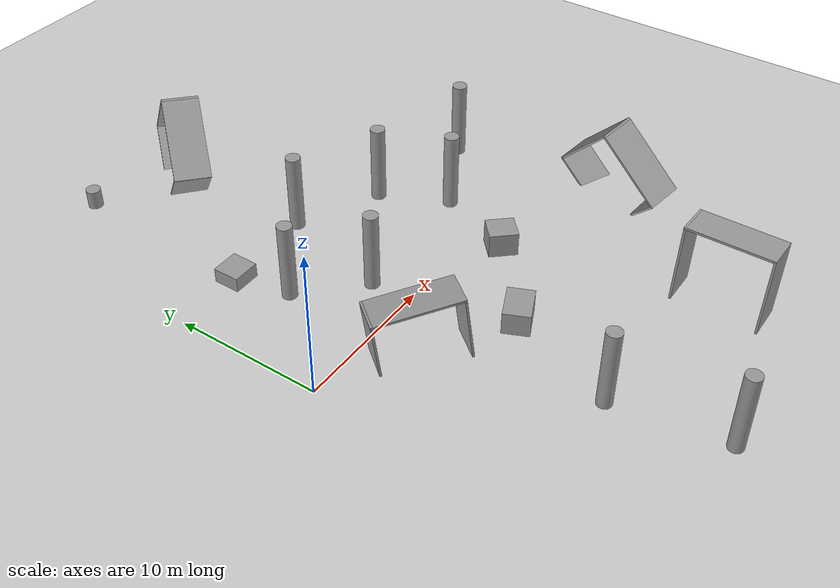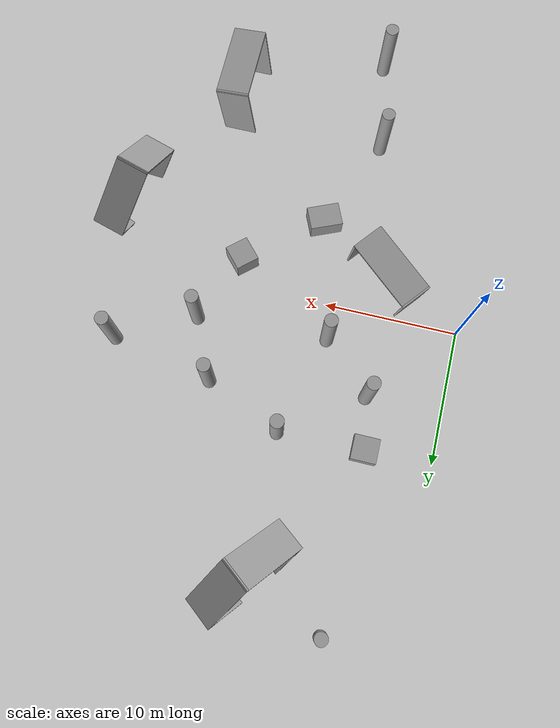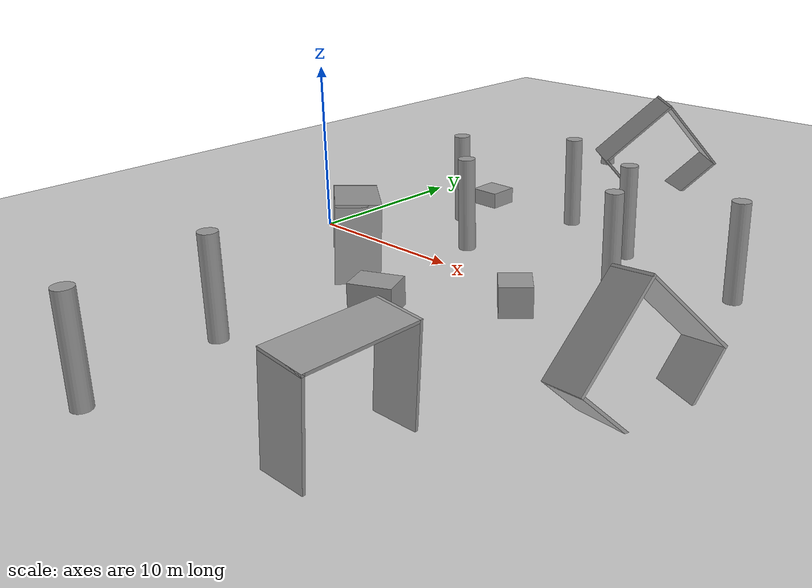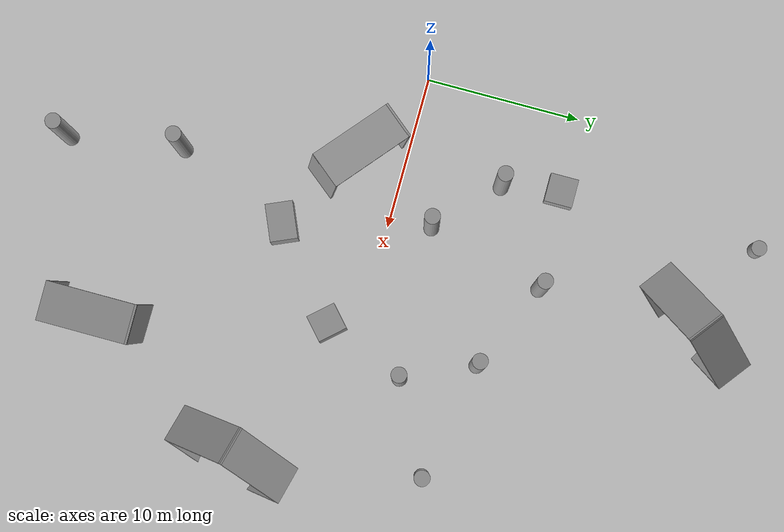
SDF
<sdf version="1.6">
 <world name="default">
  <model name="ground_plane">
   <static>1</static>
   <link name="link">
    <collision name="collision">
     <geometry><plane><normal>0 0 1</normal><size>100 100</size></plane></geometry>
     <surface><friction><ode><mu>100</mu><mu2>50</mu2></ode></friction></surface>
    </collision>
    <visual name="visual">
     <cast_shadows>0</cast_shadows>
     <geometry><plane><normal>0 0 1</normal><size>100 100</size></plane></geometry>
     <material>
      <script><uri>file://media/materials/scripts/gazebo.material</uri><name>Gazebo/Grey</name></script>
     </material>
    </visual>
   </link>
  </model>
  <model name="unit_cylinder">
   <pose>5.28034 23.1376 0.661761 0 -0 0.001729</pose>
   <link name="link">
    <inertial>
     <mass>1</mass>
     <inertia><ixx>0.145833</ixx><ixy>0</ixy><ixz>0</ixz><iyy>0.145833</iyy><iyz>0</iyz><izz>0.125</izz></inertia>
    </inertial>
    <collision name="collision">
     <geometry><cylinder><radius>0.5</radius><length>1.32353</length></cylinder></geometry>
    </collision>
    <visual name="visual">
     <geometry><cylinder><radius>0.5</radius><length>1.32353</length></cylinder></geometry>
     <material>
      <script><name>Gazebo/Grey</name><uri>file://media/materials/scripts/gazebo.material</uri></script>
     </material>
    </visual>
   </link>
  </model>
  <model name="unit_cylinder_clone_2">
   <pose>9.34612 2.72453 2.75253 0 -0 0.007033</pose>
   <link name="link">
    <inertial>
     <mass>1</mass>
     <inertia><ixx>0.145833</ixx><ixy>0</ixy><ixz>0</ixz><iyy>0.145833</iyy><iyz>0</iyz><izz>0.125</izz></inertia>
    </inertial>
    <collision name="collision">
     <geometry><cylinder><radius>0.5</radius><length>5.50507</length></cylinder></geometry>
    </collision>
    <visual name="visual">
     <geometry><cylinder><radius>0.5</radius><length>5.50507</length></cylinder></geometry>
     <material>
      <script><name>Gazebo/Grey</name><uri>file://media/materials/scripts/gazebo.material</uri></script>
     </material>
    </visual>
   </link>
  </model>
  <model name="unit_cylinder_clone_4">
   <pose>8.59201 -13.9206 2.75253 0 -0 0.007526</pose>
   <link name="link">
    <inertial>
     <mass>1</mass>
     <inertia><ixx>0.145833</ixx><ixy>0</ixy><ixz>0</ixz><iyy>0.145833</iyy><iyz>0</iyz><izz>0.125</izz></inertia>
    </inertial>
    <collision name="collision">
     <geometry><cylinder><radius>0.5</radius><length>5.50507</length></cylinder></geometry>
    </collision>
    <visual name="visual">
     <geometry><cylinder><radius>0.5</radius><length>5.50507</length></cylinder></geometry>
     <material>
      <script><name>Gazebo/Grey</name><uri>file://media/materials/scripts/gazebo.material</uri></script>
     </material>
    </visual>
   </link>
  </model>
  <model name="unit_cylinder_clone_5">
   <pose>5.63029 6.34759 2.75253 0 -0 0.006959</pose>
   <link name="link">
    <inertial>
     <mass>1</mass>
     <inertia><ixx>0.145833</ixx><ixy>0</ixy><ixz>0</ixz><iyy>0.145833</iyy><iyz>0</iyz><izz>0.125</izz></inertia>
    </inertial>
    <collision name="collision">
     <geometry><cylinder><radius>0.5</radius><length>5.50507</length></cylinder></geometry>
    </collision>
    <visual name="visual">
     <geometry><cylinder><radius>0.5</radius><length>5.50507</length></cylinder></geometry>
     <material>
      <script><name>Gazebo/Grey</name><uri>file://media/materials/scripts/gazebo.material</uri></script>
     </material>
    </visual>
   </link>
  </model>
  <model name="unit_cylinder_clone_8">
   <pose>11.3719 10.3631 2.75253 0 -0 0.007031</pose>
   <link name="link">
    <inertial>
     <mass>1</mass>
     <inertia><ixx>0.145833</ixx><ixy>0</ixy><ixz>0</ixz><iyy>0.145833</iyy><iyz>0</iyz><izz>0.125</izz></inertia>
    </inertial>
    <collision name="collision">
     <geometry><cylinder><radius>0.5</radius><length>5.50507</length></cylinder></geometry>
    </collision>
    <visual name="visual">
     <geometry><cylinder><radius>0.5</radius><length>5.50507</length></cylinder></geometry>
     <material>
      <script><name>Gazebo/Grey</name><uri>file://media/materials/scripts/gazebo.material</uri></script>
     </material>
    </visual>
   </link>
  </model>
  <model name="unit_box_clone">
   <pose>11.597 -6.53716 0.788235 0 0 -1.1581</pose>
   <link name="link">
    <inertial>
     <mass>1</mass>
     <inertia>
      <ixx>0.166667</ixx>
      <ixy>0</ixy>
      <ixz>0</ixz>
      <iyy>0.166667</iyy>
      <iyz>0</iyz>
      <izz>0.166667</izz>
     </inertia>
    </inertial>
    <collision name="collision"><geometry><box><size>1.76997 2.44518 1.57647</size></box></geometry></collision>
    <visual name="visual">
     <geometry><box><size>1.76997 2.44518 1.57647</size></box></geometry>
     <material>
      <script><name>Gazebo/Grey</name><uri>file://media/materials/scripts/gazebo.material</uri></script>
     </material>
    </visual>
   </link>
  </model>
  <model name="unit_box_clone_0">
   <pose>17.0391 -2.04264 0.84104 0 -0 0.734782</pose>
   <link name="link">
    <inertial>
     <mass>1</mass>
     <inertia>
      <ixx>0.166667</ixx>
      <ixy>0</ixy>
      <ixz>0</ixz>
      <iyy>0.166667</iyy>
      <iyz>0</iyz>
      <izz>0.166667</izz>
     </inertia>
    </inertial>
    <collision name="collision"><geometry><box><size>1.76997 1.92154 1.68208</size></box></geometry></collision>
    <visual name="visual">
     <geometry><box><size>1.76997 1.92154 1.68208</size></box></geometry>
     <material>
      <script><name>Gazebo/Grey</name><uri>file://media/materials/scripts/gazebo.material</uri></script>
     </material>
    </visual>
   </link>
  </model>
  <model name="unit_cylinder_clone_7_clone_0">
   <pose>24.7832 6.25194 2.75253 0 -0 0.006995</pose>
   <link name="link">
    <inertial>
     <mass>1</mass>
     <inertia><ixx>0.145833</ixx><ixy>0</ixy><ixz>0</ixz><iyy>0.145833</iyy><iyz>0</iyz><izz>0.125</izz></inertia>
    </inertial>
    <collision name="collision">
     <geometry><cylinder><radius>0.5</radius><length>5.50507</length></cylinder></geometry>
    </collision>
    <visual name="visual">
     <geometry><cylinder><radius>0.5</radius><length>5.50507</length></cylinder></geometry>
     <material>
      <script><name>Gazebo/Grey</name><uri>file://media/materials/scripts/gazebo.material</uri></script>
     </material>
    </visual>
   </link>
  </model>
  <model name="vRoom_clone_3_clone_clone_9">
   <link name="Wall_0">
    <pose>-2.8 -0 -1e-06 -0 -0 -1.5708</pose>
    <velocity_decay><linear>0</linear><angular>0</angular></velocity_decay>
    <visual name="Wall_0_Visual">
     <pose>0 0 1.25 0 -0 0</pose>
     <geometry><box><size>5.75 0.15 2.5</size></box></geometry>
     <material>
      <script><uri>file://media/materials/scripts/gazebo.material</uri><name>Gazebo/Grey</name></script>
      <ambient>1 1 1 1</ambient>
     </material>
    </visual>
    <collision name="Wall_0_Collision">
     <pose>0 0 1.25 0 -0 0</pose>
     <geometry><box><size>5.75 0.15 2.5</size></box></geometry>
     <surface>
      <friction>
       <ode><mu>1</mu><mu2>1</mu2><fdir1>0 0 0</fdir1><slip1>0</slip1><slip2>0</slip2></ode>
       <torsional>
        <coefficient>1</coefficient>
        <patch_radius>0</patch_radius>
        <surface_radius>0</surface_radius>
        <use_patch_radius>1</use_patch_radius>
        <ode><slip>0</slip></ode>
       </torsional>
      </friction>
      <bounce><restitution_coefficient>0</restitution_coefficient><threshold>1e+06</threshold></bounce>
      <contact>
       <collide_without_contact>0</collide_without_contact>
       <collide_without_contact_bitmask>1</collide_without_contact_bitmask>
       <collide_bitmask>1</collide_bitmask>
       <ode>
        <soft_cfm>0</soft_cfm>
        <soft_erp>0.2</soft_erp>
        <kp>1e+13</kp>
        <kd>1</kd>
        <max_vel>0.01</max_vel>
        <min_depth>0</min_depth>
       </ode>
       <bullet>
        <split_impulse>1</split_impulse>
        <split_impulse_penetration_threshold>-0.01</split_impulse_penetration_threshold>
        <soft_cfm>0</soft_cfm>
        <soft_erp>0.2</soft_erp>
        <kp>1e+13</kp>
        <kd>1</kd>
       </bullet>
      </contact>
     </surface>
    </collision>
   </link>
   <link name="Wall_1">
    <pose>2e-06 -2.8 2e-06 0 -0 0</pose>
    <velocity_decay><linear>0</linear><angular>0</angular></velocity_decay>
    <visual name="Wall_1_Visual">
     <pose>0 0 1.25 0 -0 0</pose>
     <geometry><box><size>5.75 0.15 2.5</size></box></geometry>
     <material>
      <script><uri>file://media/materials/scripts/gazebo.material</uri><name>Gazebo/Grey</name></script>
      <ambient>1 1 1 1</ambient>
     </material>
    </visual>
    <collision name="Wall_1_Collision">
     <pose>0 0 1.25 0 -0 0</pose>
     <geometry><box><size>5.75 0.15 2.5</size></box></geometry>
     <surface>
      <friction>
       <ode><mu>1</mu><mu2>1</mu2><fdir1>0 0 0</fdir1><slip1>0</slip1><slip2>0</slip2></ode>
       <torsional>
        <coefficient>1</coefficient>
        <patch_radius>0</patch_radius>
        <surface_radius>0</surface_radius>
        <use_patch_radius>1</use_patch_radius>
        <ode><slip>0</slip></ode>
       </torsional>
      </friction>
      <bounce><restitution_coefficient>0</restitution_coefficient><threshold>1e+06</threshold></bounce>
      <contact>
       <collide_without_contact>0</collide_without_contact>
       <collide_without_contact_bitmask>1</collide_without_contact_bitmask>
       <collide_bitmask>1</collide_bitmask>
       <ode>
        <soft_cfm>0</soft_cfm>
        <soft_erp>0.2</soft_erp>
        <kp>1e+13</kp>
        <kd>1</kd>
        <max_vel>0.01</max_vel>
        <min_depth>0</min_depth>
       </ode>
       <bullet>
        <split_impulse>1</split_impulse>
        <split_impulse_penetration_threshold>-0.01</split_impulse_penetration_threshold>
        <soft_cfm>0</soft_cfm>
        <soft_erp>0.2</soft_erp>
        <kp>1e+13</kp>
        <kd>1</kd>
       </bullet>
      </contact>
     </surface>
    </collision>
   </link>
   <link name="Wall_2">
    <pose>2.8 0 1e-06 0 -0 1.5708</pose>
    <velocity_decay><linear>0</linear><angular>0</angular></velocity_decay>
    <visual name="Wall_2_Visual">
     <pose>0 0 1.25 0 -0 0</pose>
     <geometry><box><size>5.75 0.15 2.5</size></box></geometry>
     <material>
      <script><uri>file://media/materials/scripts/gazebo.material</uri><name>Gazebo/Grey</name></script>
      <ambient>1 1 1 1</ambient>
     </material>
    </visual>
    <collision name="Wall_2_Collision">
     <pose>0 0 1.25 0 -0 0</pose>
     <geometry><box><size>5.75 0.15 2.5</size></box></geometry>
     <surface>
      <friction>
       <ode><mu>1</mu><mu2>1</mu2><fdir1>0 0 0</fdir1><slip1>0</slip1><slip2>0</slip2></ode>
       <torsional>
        <coefficient>1</coefficient>
        <patch_radius>0</patch_radius>
        <surface_radius>0</surface_radius>
        <use_patch_radius>1</use_patch_radius>
        <ode><slip>0</slip></ode>
       </torsional>
      </friction>
      <bounce><restitution_coefficient>0</restitution_coefficient><threshold>1e+06</threshold></bounce>
      <contact>
       <collide_without_contact>0</collide_without_contact>
       <collide_without_contact_bitmask>1</collide_without_contact_bitmask>
       <collide_bitmask>1</collide_bitmask>
       <ode>
        <soft_cfm>0</soft_cfm>
        <soft_erp>0.2</soft_erp>
        <kp>1e+13</kp>
        <kd>1</kd>
        <max_vel>0.01</max_vel>
        <min_depth>0</min_depth>
       </ode>
       <bullet>
        <split_impulse>1</split_impulse>
        <split_impulse_penetration_threshold>-0.01</split_impulse_penetration_threshold>
        <soft_cfm>0</soft_cfm>
        <soft_erp>0.2</soft_erp>
        <kp>1e+13</kp>
        <kd>1</kd>
       </bullet>
      </contact>
     </surface>
    </collision>
   </link>
   <link name="Wall_3">
    <pose>-2e-06 2.8 -2e-06 0 -0 3.14159</pose>
    <velocity_decay><linear>0</linear><angular>0</angular></velocity_decay>
    <visual name="Wall_3_Visual">
     <pose>0 0 1.25 0 -0 0</pose>
     <geometry><box><size>5.75 0.15 2.5</size></box></geometry>
     <material>
      <script><uri>file://media/materials/scripts/gazebo.material</uri><name>Gazebo/Grey</name></script>
      <ambient>1 1 1 1</ambient>
     </material>
    </visual>
    <collision name="Wall_3_Collision">
     <pose>0 0 1.25 0 -0 0</pose>
     <geometry><box><size>5.75 0.15 2.5</size></box></geometry>
     <surface>
      <friction>
       <ode><mu>1</mu><mu2>1</mu2><fdir1>0 0 0</fdir1><slip1>0</slip1><slip2>0</slip2></ode>
       <torsional>
        <coefficient>1</coefficient>
        <patch_radius>0</patch_radius>
        <surface_radius>0</surface_radius>
        <use_patch_radius>1</use_patch_radius>
        <ode><slip>0</slip></ode>
       </torsional>
      </friction>
      <bounce><restitution_coefficient>0</restitution_coefficient><threshold>1e+06</threshold></bounce>
      <contact>
       <collide_without_contact>0</collide_without_contact>
       <collide_without_contact_bitmask>1</collide_without_contact_bitmask>
       <collide_bitmask>1</collide_bitmask>
       <ode>
        <soft_cfm>0</soft_cfm>
        <soft_erp>0.2</soft_erp>
        <kp>1e+13</kp>
        <kd>1</kd>
        <max_vel>0.01</max_vel>
        <min_depth>0</min_depth>
       </ode>
       <bullet>
        <split_impulse>1</split_impulse>
        <split_impulse_penetration_threshold>-0.01</split_impulse_penetration_threshold>
        <soft_cfm>0</soft_cfm>
        <soft_erp>0.2</soft_erp>
        <kp>1e+13</kp>
        <kd>1</kd>
       </bullet>
      </contact>
     </surface>
    </collision>
   </link>
   <static>1</static>
   <pose>21.486 -16.0168 2.16039 4e-06 -1.47998 -7e-06</pose>
  </model>
  <model name="vRoom_clone_3_clone_clone_9_clone_0">
   <link name="Wall_0">
    <pose>-2.8 -0 -1e-06 -0 -0 -1.5708</pose>
    <velocity_decay><linear>0</linear><angular>0</angular></velocity_decay>
    <visual name="Wall_0_Visual">
     <pose>0 0 1.25 0 -0 0</pose>
     <geometry><box><size>5.75 0.15 2.5</size></box></geometry>
     <material>
      <script><uri>file://media/materials/scripts/gazebo.material</uri><name>Gazebo/Grey</name></script>
      <ambient>1 1 1 1</ambient>
     </material>
    </visual>
    <collision name="Wall_0_Collision">
     <pose>0 0 1.25 0 -0 0</pose>
     <geometry><box><size>5.75 0.15 2.5</size></box></geometry>
     <surface>
      <friction>
       <ode><mu>1</mu><mu2>1</mu2><fdir1>0 0 0</fdir1><slip1>0</slip1><slip2>0</slip2></ode>
       <torsional>
        <coefficient>1</coefficient>
        <patch_radius>0</patch_radius>
        <surface_radius>0</surface_radius>
        <use_patch_radius>1</use_patch_radius>
        <ode><slip>0</slip></ode>
       </torsional>
      </friction>
      <bounce><restitution_coefficient>0</restitution_coefficient><threshold>1e+06</threshold></bounce>
      <contact>
       <collide_without_contact>0</collide_without_contact>
       <collide_without_contact_bitmask>1</collide_without_contact_bitmask>
       <collide_bitmask>1</collide_bitmask>
       <ode>
        <soft_cfm>0</soft_cfm>
        <soft_erp>0.2</soft_erp>
        <kp>1e+13</kp>
        <kd>1</kd>
        <max_vel>0.01</max_vel>
        <min_depth>0</min_depth>
       </ode>
       <bullet>
        <split_impulse>1</split_impulse>
        <split_impulse_penetration_threshold>-0.01</split_impulse_penetration_threshold>
        <soft_cfm>0</soft_cfm>
        <soft_erp>0.2</soft_erp>
        <kp>1e+13</kp>
        <kd>1</kd>
       </bullet>
      </contact>
     </surface>
    </collision>
   </link>
   <link name="Wall_1">
    <pose>2e-06 -2.8 2e-06 0 -0 0</pose>
    <velocity_decay><linear>0</linear><angular>0</angular></velocity_decay>
    <visual name="Wall_1_Visual">
     <pose>0 0 1.25 0 -0 0</pose>
     <geometry><box><size>5.75 0.15 2.5</size></box></geometry>
     <material>
      <script><uri>file://media/materials/scripts/gazebo.material</uri><name>Gazebo/Grey</name></script>
      <ambient>1 1 1 1</ambient>
     </material>
    </visual>
    <collision name="Wall_1_Collision">
     <pose>0 0 1.25 0 -0 0</pose>
     <geometry><box><size>5.75 0.15 2.5</size></box></geometry>
     <surface>
      <friction>
       <ode><mu>1</mu><mu2>1</mu2><fdir1>0 0 0</fdir1><slip1>0</slip1><slip2>0</slip2></ode>
       <torsional>
        <coefficient>1</coefficient>
        <patch_radius>0</patch_radius>
        <surface_radius>0</surface_radius>
        <use_patch_radius>1</use_patch_radius>
        <ode><slip>0</slip></ode>
       </torsional>
      </friction>
      <bounce><restitution_coefficient>0</restitution_coefficient><threshold>1e+06</threshold></bounce>
      <contact>
       <collide_without_contact>0</collide_without_contact>
       <collide_without_contact_bitmask>1</collide_without_contact_bitmask>
       <collide_bitmask>1</collide_bitmask>
       <ode>
        <soft_cfm>0</soft_cfm>
        <soft_erp>0.2</soft_erp>
        <kp>1e+13</kp>
        <kd>1</kd>
        <max_vel>0.01</max_vel>
        <min_depth>0</min_depth>
       </ode>
       <bullet>
        <split_impulse>1</split_impulse>
        <split_impulse_penetration_threshold>-0.01</split_impulse_penetration_threshold>
        <soft_cfm>0</soft_cfm>
        <soft_erp>0.2</soft_erp>
        <kp>1e+13</kp>
        <kd>1</kd>
       </bullet>
      </contact>
     </surface>
    </collision>
   </link>
   <link name="Wall_2">
    <pose>2.8 0 1e-06 0 -0 1.5708</pose>
    <velocity_decay><linear>0</linear><angular>0</angular></velocity_decay>
    <visual name="Wall_2_Visual">
     <pose>0 0 1.25 0 -0 0</pose>
     <geometry><box><size>5.75 0.15 2.5</size></box></geometry>
     <material>
      <script><uri>file://media/materials/scripts/gazebo.material</uri><name>Gazebo/Grey</name></script>
      <ambient>1 1 1 1</ambient>
     </material>
    </visual>
    <collision name="Wall_2_Collision">
     <pose>0 0 1.25 0 -0 0</pose>
     <geometry><box><size>5.75 0.15 2.5</size></box></geometry>
     <surface>
      <friction>
       <ode><mu>1</mu><mu2>1</mu2><fdir1>0 0 0</fdir1><slip1>0</slip1><slip2>0</slip2></ode>
       <torsional>
        <coefficient>1</coefficient>
        <patch_radius>0</patch_radius>
        <surface_radius>0</surface_radius>
        <use_patch_radius>1</use_patch_radius>
        <ode><slip>0</slip></ode>
       </torsional>
      </friction>
      <bounce><restitution_coefficient>0</restitution_coefficient><threshold>1e+06</threshold></bounce>
      <contact>
       <collide_without_contact>0</collide_without_contact>
       <collide_without_contact_bitmask>1</collide_without_contact_bitmask>
       <collide_bitmask>1</collide_bitmask>
       <ode>
        <soft_cfm>0</soft_cfm>
        <soft_erp>0.2</soft_erp>
        <kp>1e+13</kp>
        <kd>1</kd>
        <max_vel>0.01</max_vel>
        <min_depth>0</min_depth>
       </ode>
       <bullet>
        <split_impulse>1</split_impulse>
        <split_impulse_penetration_threshold>-0.01</split_impulse_penetration_threshold>
        <soft_cfm>0</soft_cfm>
        <soft_erp>0.2</soft_erp>
        <kp>1e+13</kp>
        <kd>1</kd>
       </bullet>
      </contact>
     </surface>
    </collision>
   </link>
   <link name="Wall_3">
    <pose>-2e-06 2.8 -2e-06 0 -0 3.14159</pose>
    <velocity_decay><linear>0</linear><angular>0</angular></velocity_decay>
    <visual name="Wall_3_Visual">
     <pose>0 0 1.25 0 -0 0</pose>
     <geometry><box><size>5.75 0.15 2.5</size></box></geometry>
     <material>
      <script><uri>file://media/materials/scripts/gazebo.material</uri><name>Gazebo/Grey</name></script>
      <ambient>1 1 1 1</ambient>
     </material>
    </visual>
    <collision name="Wall_3_Collision">
     <pose>0 0 1.25 0 -0 0</pose>
     <geometry><box><size>5.75 0.15 2.5</size></box></geometry>
     <surface>
      <friction>
       <ode><mu>1</mu><mu2>1</mu2><fdir1>0 0 0</fdir1><slip1>0</slip1><slip2>0</slip2></ode>
       <torsional>
        <coefficient>1</coefficient>
        <patch_radius>0</patch_radius>
        <surface_radius>0</surface_radius>
        <use_patch_radius>1</use_patch_radius>
        <ode><slip>0</slip></ode>
       </torsional>
      </friction>
      <bounce><restitution_coefficient>0</restitution_coefficient><threshold>1e+06</threshold></bounce>
      <contact>
       <collide_without_contact>0</collide_without_contact>
       <collide_without_contact_bitmask>1</collide_without_contact_bitmask>
       <collide_bitmask>1</collide_bitmask>
       <ode>
        <soft_cfm>0</soft_cfm>
        <soft_erp>0.2</soft_erp>
        <kp>1e+13</kp>
        <kd>1</kd>
        <max_vel>0.01</max_vel>
        <min_depth>0</min_depth>
       </ode>
       <bullet>
        <split_impulse>1</split_impulse>
        <split_impulse_penetration_threshold>-0.01</split_impulse_penetration_threshold>
        <soft_cfm>0</soft_cfm>
        <soft_erp>0.2</soft_erp>
        <kp>1e+13</kp>
        <kd>1</kd>
       </bullet>
      </contact>
     </surface>
    </collision>
   </link>
   <static>1</static>
   <pose>6.88312 -2.08616 1 -1.11103 -1.4406 1.99896</pose>
  </model>
  <model name="vRoom_clone_3_clone_clone_9_clone_2">
   <link name="Wall_0">
    <pose>-2.8 -0 -1e-06 -0 -0 -1.5708</pose>
    <velocity_decay><linear>0</linear><angular>0</angular></velocity_decay>
    <visual name="Wall_0_Visual">
     <pose>0 0 1.25 0 -0 0</pose>
     <geometry><box><size>5.75 0.15 2.5</size></box></geometry>
     <material>
      <script><uri>file://media/materials/scripts/gazebo.material</uri><name>Gazebo/Grey</name></script>
      <ambient>1 1 1 1</ambient>
     </material>
    </visual>
    <collision name="Wall_0_Collision">
     <pose>0 0 1.25 0 -0 0</pose>
     <geometry><box><size>5.75 0.15 2.5</size></box></geometry>
     <surface>
      <friction>
       <ode><mu>1</mu><mu2>1</mu2><fdir1>0 0 0</fdir1><slip1>0</slip1><slip2>0</slip2></ode>
       <torsional>
        <coefficient>1</coefficient>
        <patch_radius>0</patch_radius>
        <surface_radius>0</surface_radius>
        <use_patch_radius>1</use_patch_radius>
        <ode><slip>0</slip></ode>
       </torsional>
      </friction>
      <bounce><restitution_coefficient>0</restitution_coefficient><threshold>1e+06</threshold></bounce>
      <contact>
       <collide_without_contact>0</collide_without_contact>
       <collide_without_contact_bitmask>1</collide_without_contact_bitmask>
       <collide_bitmask>1</collide_bitmask>
       <ode>
        <soft_cfm>0</soft_cfm>
        <soft_erp>0.2</soft_erp>
        <kp>1e+13</kp>
        <kd>1</kd>
        <max_vel>0.01</max_vel>
        <min_depth>0</min_depth>
       </ode>
       <bullet>
        <split_impulse>1</split_impulse>
        <split_impulse_penetration_threshold>-0.01</split_impulse_penetration_threshold>
        <soft_cfm>0</soft_cfm>
        <soft_erp>0.2</soft_erp>
        <kp>1e+13</kp>
        <kd>1</kd>
       </bullet>
      </contact>
     </surface>
    </collision>
   </link>
   <link name="Wall_1">
    <pose>2e-06 -2.8 2e-06 0 -0 0</pose>
    <velocity_decay><linear>0</linear><angular>0</angular></velocity_decay>
    <visual name="Wall_1_Visual">
     <pose>0 0 1.25 0 -0 0</pose>
     <geometry><box><size>5.75 0.15 2.5</size></box></geometry>
     <material>
      <script><uri>file://media/materials/scripts/gazebo.material</uri><name>Gazebo/Grey</name></script>
      <ambient>1 1 1 1</ambient>
     </material>
    </visual>
    <collision name="Wall_1_Collision">
     <pose>0 0 1.25 0 -0 0</pose>
     <geometry><box><size>5.75 0.15 2.5</size></box></geometry>
     <surface>
      <friction>
       <ode><mu>1</mu><mu2>1</mu2><fdir1>0 0 0</fdir1><slip1>0</slip1><slip2>0</slip2></ode>
       <torsional>
        <coefficient>1</coefficient>
        <patch_radius>0</patch_radius>
        <surface_radius>0</surface_radius>
        <use_patch_radius>1</use_patch_radius>
        <ode><slip>0</slip></ode>
       </torsional>
      </friction>
      <bounce><restitution_coefficient>0</restitution_coefficient><threshold>1e+06</threshold></bounce>
      <contact>
       <collide_without_contact>0</collide_without_contact>
       <collide_without_contact_bitmask>1</collide_without_contact_bitmask>
       <collide_bitmask>1</collide_bitmask>
       <ode>
        <soft_cfm>0</soft_cfm>
        <soft_erp>0.2</soft_erp>
        <kp>1e+13</kp>
        <kd>1</kd>
        <max_vel>0.01</max_vel>
        <min_depth>0</min_depth>
       </ode>
       <bullet>
        <split_impulse>1</split_impulse>
        <split_impulse_penetration_threshold>-0.01</split_impulse_penetration_threshold>
        <soft_cfm>0</soft_cfm>
        <soft_erp>0.2</soft_erp>
        <kp>1e+13</kp>
        <kd>1</kd>
       </bullet>
      </contact>
     </surface>
    </collision>
   </link>
   <link name="Wall_2">
    <pose>2.8 0 1e-06 0 -0 1.5708</pose>
    <velocity_decay><linear>0</linear><angular>0</angular></velocity_decay>
    <visual name="Wall_2_Visual">
     <pose>0 0 1.25 0 -0 0</pose>
     <geometry><box><size>5.75 0.15 2.5</size></box></geometry>
     <material>
      <script><uri>file://media/materials/scripts/gazebo.material</uri><name>Gazebo/Grey</name></script>
      <ambient>1 1 1 1</ambient>
     </material>
    </visual>
    <collision name="Wall_2_Collision">
     <pose>0 0 1.25 0 -0 0</pose>
     <geometry><box><size>5.75 0.15 2.5</size></box></geometry>
     <surface>
      <friction>
       <ode><mu>1</mu><mu2>1</mu2><fdir1>0 0 0</fdir1><slip1>0</slip1><slip2>0</slip2></ode>
       <torsional>
        <coefficient>1</coefficient>
        <patch_radius>0</patch_radius>
        <surface_radius>0</surface_radius>
        <use_patch_radius>1</use_patch_radius>
        <ode><slip>0</slip></ode>
       </torsional>
      </friction>
      <bounce><restitution_coefficient>0</restitution_coefficient><threshold>1e+06</threshold></bounce>
      <contact>
       <collide_without_contact>0</collide_without_contact>
       <collide_without_contact_bitmask>1</collide_without_contact_bitmask>
       <collide_bitmask>1</collide_bitmask>
       <ode>
        <soft_cfm>0</soft_cfm>
        <soft_erp>0.2</soft_erp>
        <kp>1e+13</kp>
        <kd>1</kd>
        <max_vel>0.01</max_vel>
        <min_depth>0</min_depth>
       </ode>
       <bullet>
        <split_impulse>1</split_impulse>
        <split_impulse_penetration_threshold>-0.01</split_impulse_penetration_threshold>
        <soft_cfm>0</soft_cfm>
        <soft_erp>0.2</soft_erp>
        <kp>1e+13</kp>
        <kd>1</kd>
       </bullet>
      </contact>
     </surface>
    </collision>
   </link>
   <link name="Wall_3">
    <pose>-2e-06 2.8 -2e-06 0 -0 3.14159</pose>
    <velocity_decay><linear>0</linear><angular>0</angular></velocity_decay>
    <visual name="Wall_3_Visual">
     <pose>0 0 1.25 0 -0 0</pose>
     <geometry><box><size>5.75 0.15 2.5</size></box></geometry>
     <material>
      <script><uri>file://media/materials/scripts/gazebo.material</uri><name>Gazebo/Grey</name></script>
      <ambient>1 1 1 1</ambient>
     </material>
    </visual>
    <collision name="Wall_3_Collision">
     <pose>0 0 1.25 0 -0 0</pose>
     <geometry><box><size>5.75 0.15 2.5</size></box></geometry>
     <surface>
      <friction>
       <ode><mu>1</mu><mu2>1</mu2><fdir1>0 0 0</fdir1><slip1>0</slip1><slip2>0</slip2></ode>
       <torsional>
        <coefficient>1</coefficient>
        <patch_radius>0</patch_radius>
        <surface_radius>0</surface_radius>
        <use_patch_radius>1</use_patch_radius>
        <ode><slip>0</slip></ode>
       </torsional>
      </friction>
      <bounce><restitution_coefficient>0</restitution_coefficient><threshold>1e+06</threshold></bounce>
      <contact>
       <collide_without_contact>0</collide_without_contact>
       <collide_without_contact_bitmask>1</collide_without_contact_bitmask>
       <collide_bitmask>1</collide_bitmask>
       <ode>
        <soft_cfm>0</soft_cfm>
        <soft_erp>0.2</soft_erp>
        <kp>1e+13</kp>
        <kd>1</kd>
        <max_vel>0.01</max_vel>
        <min_depth>0</min_depth>
       </ode>
       <bullet>
        <split_impulse>1</split_impulse>
        <split_impulse_penetration_threshold>-0.01</split_impulse_penetration_threshold>
        <soft_cfm>0</soft_cfm>
        <soft_erp>0.2</soft_erp>
        <kp>1e+13</kp>
        <kd>1</kd>
       </bullet>
      </contact>
     </surface>
    </collision>
   </link>
   <static>1</static>
   <pose>27.7206 -5.8322 2 1.8013 -0.792216 -1.97465</pose>
  </model>
  <model name="unit_box_1_clone_0">
   <pose>4.92425 10.1233 0.499994 7e-06 -0 0</pose>
   <link name="link">
    <inertial>
     <mass>1</mass>
     <inertia>
      <ixx>0.166667</ixx>
      <ixy>0</ixy>
      <ixz>0</ixz>
      <iyy>0.166667</iyy>
      <iyz>0</iyz>
      <izz>0.166667</izz>
     </inertia>
    </inertial>
    <collision name="collision"><geometry><box><size>1.86589 1.81745 1</size></box></geometry></collision>
    <visual name="visual">
     <geometry><box><size>1.86589 1.81745 1</size></box></geometry>
     <material>
      <script><name>Gazebo/Grey</name><uri>file://media/materials/scripts/gazebo.material</uri></script>
     </material>
    </visual>
   </link>
  </model>
  <model name="unit_cylinder_clone_9_clone_2">
   <pose>17.1067 7.80346 2.75253 0 -0 0.009123</pose>
   <link name="link">
    <inertial>
     <mass>1</mass>
     <inertia><ixx>0.145833</ixx><ixy>0</ixy><ixz>0</ixz><iyy>0.145833</iyy><iyz>0</iyz><izz>0.125</izz></inertia>
    </inertial>
    <collision name="collision">
     <geometry><cylinder><radius>0.5</radius><length>5.50507</length></cylinder></geometry>
    </collision>
    <visual name="visual">
     <geometry><cylinder><radius>0.5</radius><length>5.50507</length></cylinder></geometry>
     <material>
      <script><name>Gazebo/Grey</name><uri>file://media/materials/scripts/gazebo.material</uri></script>
     </material>
    </visual>
   </link>
  </model>
  <model name="vRoom_clone_3_clone_clone_9_clone_clone_0">
   <link name="Wall_0">
    <pose>-2.8 -0 -1e-06 -0 -0 -1.5708</pose>
    <velocity_decay><linear>0</linear><angular>0</angular></velocity_decay>
    <visual name="Wall_0_Visual">
     <pose>0 0 1.25 0 -0 0</pose>
     <geometry><box><size>5.75 0.15 2.5</size></box></geometry>
     <material>
      <script><uri>file://media/materials/scripts/gazebo.material</uri><name>Gazebo/Grey</name></script>
      <ambient>1 1 1 1</ambient>
     </material>
    </visual>
    <collision name="Wall_0_Collision">
     <pose>0 0 1.25 0 -0 0</pose>
     <geometry><box><size>5.75 0.15 2.5</size></box></geometry>
     <surface>
      <friction>
       <ode><mu>1</mu><mu2>1</mu2><fdir1>0 0 0</fdir1><slip1>0</slip1><slip2>0</slip2></ode>
       <torsional>
        <coefficient>1</coefficient>
        <patch_radius>0</patch_radius>
        <surface_radius>0</surface_radius>
        <use_patch_radius>1</use_patch_radius>
        <ode><slip>0</slip></ode>
       </torsional>
      </friction>
      <bounce><restitution_coefficient>0</restitution_coefficient><threshold>1e+06</threshold></bounce>
      <contact>
       <collide_without_contact>0</collide_without_contact>
       <collide_without_contact_bitmask>1</collide_without_contact_bitmask>
       <collide_bitmask>1</collide_bitmask>
       <ode>
        <soft_cfm>0</soft_cfm>
        <soft_erp>0.2</soft_erp>
        <kp>1e+13</kp>
        <kd>1</kd>
        <max_vel>0.01</max_vel>
        <min_depth>0</min_depth>
       </ode>
       <bullet>
        <split_impulse>1</split_impulse>
        <split_impulse_penetration_threshold>-0.01</split_impulse_penetration_threshold>
        <soft_cfm>0</soft_cfm>
        <soft_erp>0.2</soft_erp>
        <kp>1e+13</kp>
        <kd>1</kd>
       </bullet>
      </contact>
     </surface>
    </collision>
   </link>
   <link name="Wall_1">
    <pose>2e-06 -2.8 2e-06 0 -0 0</pose>
    <velocity_decay><linear>0</linear><angular>0</angular></velocity_decay>
    <visual name="Wall_1_Visual">
     <pose>0 0 1.25 0 -0 0</pose>
     <geometry><box><size>5.75 0.15 2.5</size></box></geometry>
     <material>
      <script><uri>file://media/materials/scripts/gazebo.material</uri><name>Gazebo/Grey</name></script>
      <ambient>1 1 1 1</ambient>
     </material>
    </visual>
    <collision name="Wall_1_Collision">
     <pose>0 0 1.25 0 -0 0</pose>
     <geometry><box><size>5.75 0.15 2.5</size></box></geometry>
     <surface>
      <friction>
       <ode><mu>1</mu><mu2>1</mu2><fdir1>0 0 0</fdir1><slip1>0</slip1><slip2>0</slip2></ode>
       <torsional>
        <coefficient>1</coefficient>
        <patch_radius>0</patch_radius>
        <surface_radius>0</surface_radius>
        <use_patch_radius>1</use_patch_radius>
        <ode><slip>0</slip></ode>
       </torsional>
      </friction>
      <bounce><restitution_coefficient>0</restitution_coefficient><threshold>1e+06</threshold></bounce>
      <contact>
       <collide_without_contact>0</collide_without_contact>
       <collide_without_contact_bitmask>1</collide_without_contact_bitmask>
       <collide_bitmask>1</collide_bitmask>
       <ode>
        <soft_cfm>0</soft_cfm>
        <soft_erp>0.2</soft_erp>
        <kp>1e+13</kp>
        <kd>1</kd>
        <max_vel>0.01</max_vel>
        <min_depth>0</min_depth>
       </ode>
       <bullet>
        <split_impulse>1</split_impulse>
        <split_impulse_penetration_threshold>-0.01</split_impulse_penetration_threshold>
        <soft_cfm>0</soft_cfm>
        <soft_erp>0.2</soft_erp>
        <kp>1e+13</kp>
        <kd>1</kd>
       </bullet>
      </contact>
     </surface>
    </collision>
   </link>
   <link name="Wall_2">
    <pose>2.8 0 1e-06 0 -0 1.5708</pose>
    <velocity_decay><linear>0</linear><angular>0</angular></velocity_decay>
    <visual name="Wall_2_Visual">
     <pose>0 0 1.25 0 -0 0</pose>
     <geometry><box><size>5.75 0.15 2.5</size></box></geometry>
     <material>
      <script><uri>file://media/materials/scripts/gazebo.material</uri><name>Gazebo/Grey</name></script>
      <ambient>1 1 1 1</ambient>
     </material>
    </visual>
    <collision name="Wall_2_Collision">
     <pose>0 0 1.25 0 -0 0</pose>
     <geometry><box><size>5.75 0.15 2.5</size></box></geometry>
     <surface>
      <friction>
       <ode><mu>1</mu><mu2>1</mu2><fdir1>0 0 0</fdir1><slip1>0</slip1><slip2>0</slip2></ode>
       <torsional>
        <coefficient>1</coefficient>
        <patch_radius>0</patch_radius>
        <surface_radius>0</surface_radius>
        <use_patch_radius>1</use_patch_radius>
        <ode><slip>0</slip></ode>
       </torsional>
      </friction>
      <bounce><restitution_coefficient>0</restitution_coefficient><threshold>1e+06</threshold></bounce>
      <contact>
       <collide_without_contact>0</collide_without_contact>
       <collide_without_contact_bitmask>1</collide_without_contact_bitmask>
       <collide_bitmask>1</collide_bitmask>
       <ode>
        <soft_cfm>0</soft_cfm>
        <soft_erp>0.2</soft_erp>
        <kp>1e+13</kp>
        <kd>1</kd>
        <max_vel>0.01</max_vel>
        <min_depth>0</min_depth>
       </ode>
       <bullet>
        <split_impulse>1</split_impulse>
        <split_impulse_penetration_threshold>-0.01</split_impulse_penetration_threshold>
        <soft_cfm>0</soft_cfm>
        <soft_erp>0.2</soft_erp>
        <kp>1e+13</kp>
        <kd>1</kd>
       </bullet>
      </contact>
     </surface>
    </collision>
   </link>
   <link name="Wall_3">
    <pose>-2e-06 2.8 -2e-06 0 -0 3.14159</pose>
    <velocity_decay><linear>0</linear><angular>0</angular></velocity_decay>
    <visual name="Wall_3_Visual">
     <pose>0 0 1.25 0 -0 0</pose>
     <geometry><box><size>5.75 0.15 2.5</size></box></geometry>
     <material>
      <script><uri>file://media/materials/scripts/gazebo.material</uri><name>Gazebo/Grey</name></script>
      <ambient>1 1 1 1</ambient>
     </material>
    </visual>
    <collision name="Wall_3_Collision">
     <pose>0 0 1.25 0 -0 0</pose>
     <geometry><box><size>5.75 0.15 2.5</size></box></geometry>
     <surface>
      <friction>
       <ode><mu>1</mu><mu2>1</mu2><fdir1>0 0 0</fdir1><slip1>0</slip1><slip2>0</slip2></ode>
       <torsional>
        <coefficient>1</coefficient>
        <patch_radius>0</patch_radius>
        <surface_radius>0</surface_radius>
        <use_patch_radius>1</use_patch_radius>
        <ode><slip>0</slip></ode>
       </torsional>
      </friction>
      <bounce><restitution_coefficient>0</restitution_coefficient><threshold>1e+06</threshold></bounce>
      <contact>
       <collide_without_contact>0</collide_without_contact>
       <collide_without_contact_bitmask>1</collide_without_contact_bitmask>
       <collide_bitmask>1</collide_bitmask>
       <ode>
        <soft_cfm>0</soft_cfm>
        <soft_erp>0.2</soft_erp>
        <kp>1e+13</kp>
        <kd>1</kd>
        <max_vel>0.01</max_vel>
        <min_depth>0</min_depth>
       </ode>
       <bullet>
        <split_impulse>1</split_impulse>
        <split_impulse_penetration_threshold>-0.01</split_impulse_penetration_threshold>
        <soft_cfm>0</soft_cfm>
        <soft_erp>0.2</soft_erp>
        <kp>1e+13</kp>
        <kd>1</kd>
       </bullet>
      </contact>
     </surface>
    </collision>
   </link>
   <static>1</static>
   <pose>12.2194 19.511 2.16038 1.45974 -0.860248 -2.1368</pose>
  </model>
  <model name="unit_cylinder_clone_9_clone_5_clone_1_clone_2">
   <pose>9.74769 -21.2483 2.75253 0 -0 0.008554</pose>
   <link name="link">
    <inertial>
     <mass>1</mass>
     <inertia><ixx>0.145833</ixx><ixy>0</ixy><ixz>0</ixz><iyy>0.145833</iyy><iyz>0</iyz><izz>0.125</izz></inertia>
    </inertial>
    <collision name="collision">
     <geometry><cylinder><radius>0.5</radius><length>5.50507</length></cylinder></geometry>
    </collision>
    <visual name="visual">
     <geometry><cylinder><radius>0.5</radius><length>5.50507</length></cylinder></geometry>
     <material>
      <script><name>Gazebo/Grey</name><uri>file://media/materials/scripts/gazebo.material</uri></script>
     </material>
    </visual>
   </link>
  </model>
  <model name="unit_cylinder_clone_9_clone_2_clone_1">
   <pose>19.1876 3.29063 2.75253 0 -0 0.009103</pose>
   <link name="link">
    <inertial>
     <mass>1</mass>
     <inertia><ixx>0.145833</ixx><ixy>0</ixy><ixz>0</ixz><iyy>0.145833</iyy><iyz>0</iyz><izz>0.125</izz></inertia>
    </inertial>
    <collision name="collision">
     <geometry><cylinder><radius>0.5</radius><length>5.50507</length></cylinder></geometry>
    </collision>
    <visual name="visual">
     <geometry><cylinder><radius>0.5</radius><length>5.50507</length></cylinder></geometry>
     <material>
      <script><name>Gazebo/Grey</name><uri>file://media/materials/scripts/gazebo.material</uri></script>
     </material>
    </visual>
   </link>
  </model>
 </world>
</sdf>
